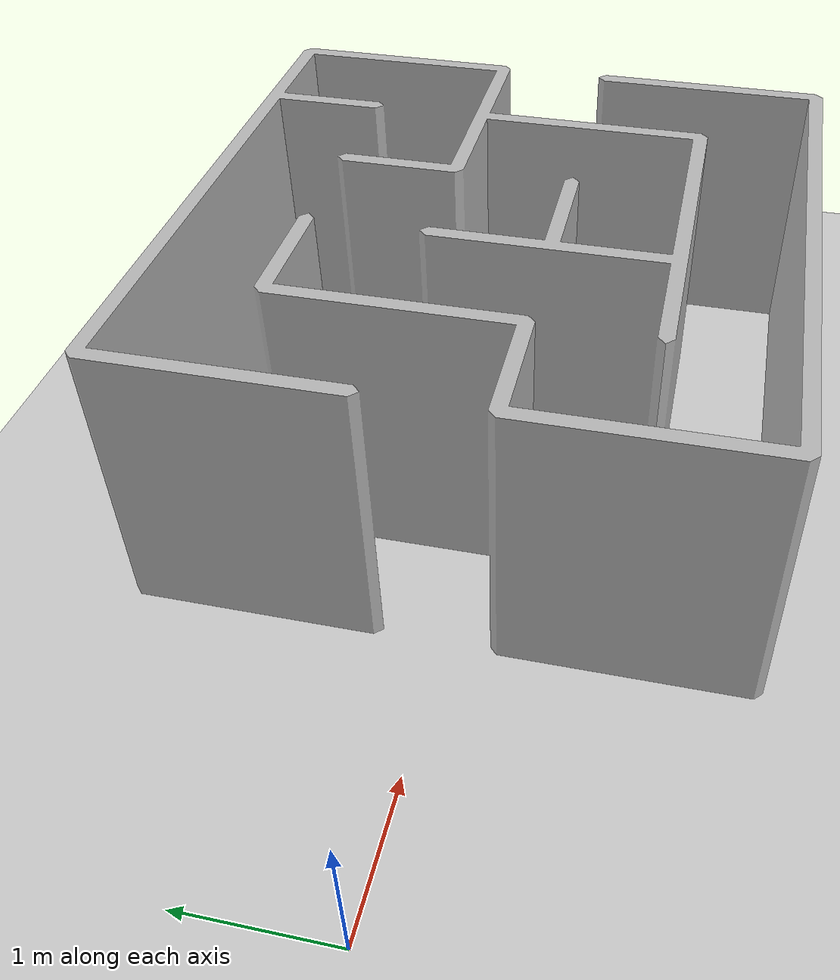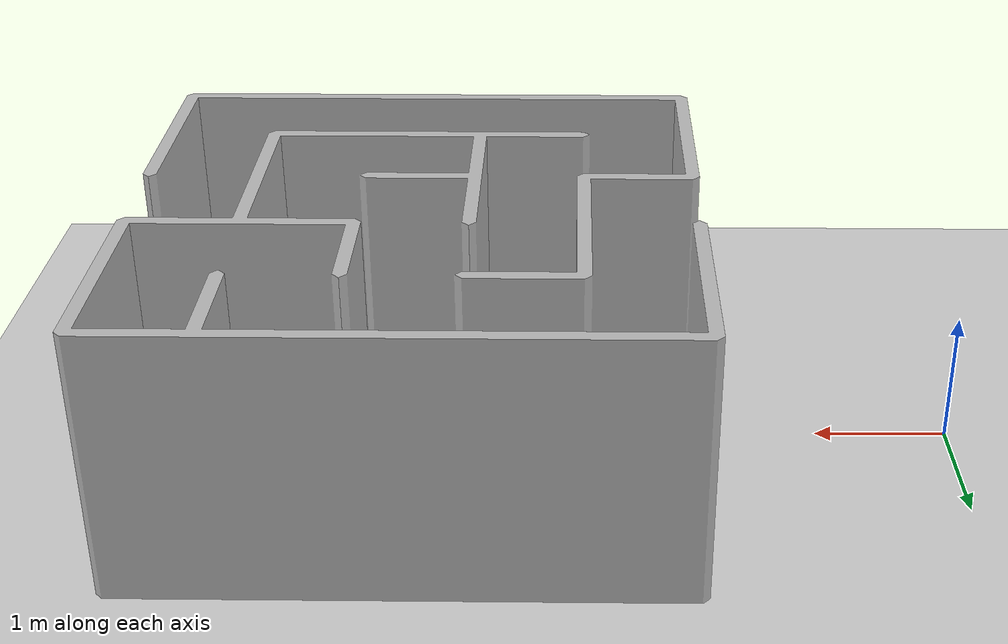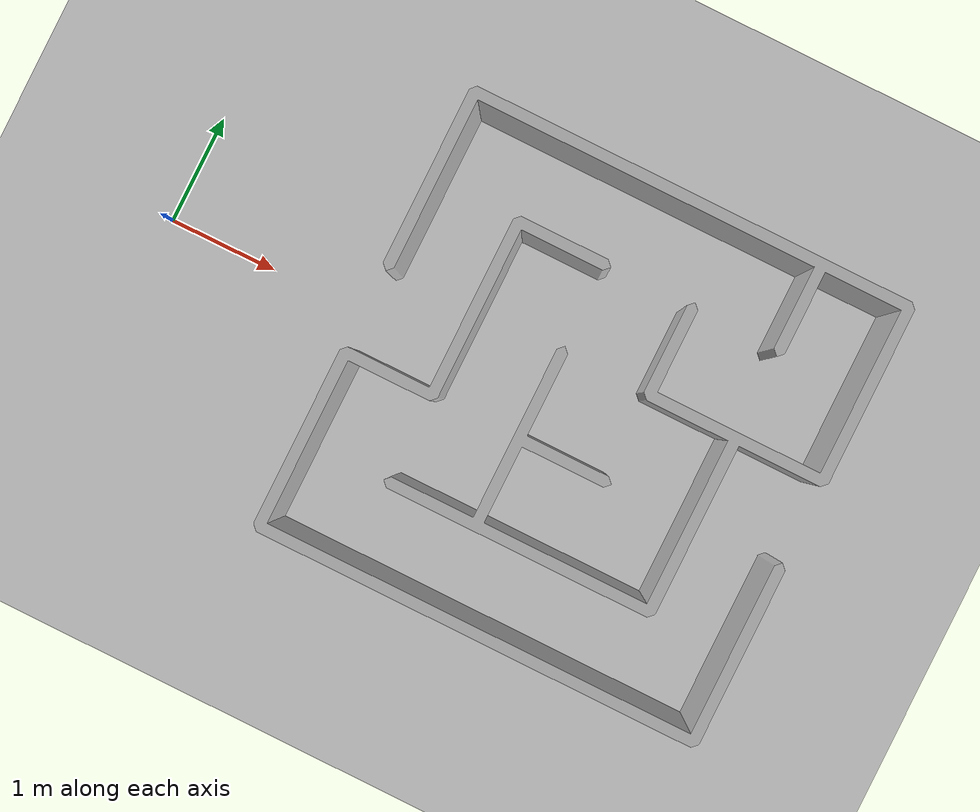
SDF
<?xml version="1.0"?>
<sdf version='1.11'>
  <world name='maze_world'>
    <physics name='1ms' type='ignored'>
      <max_step_size>0.001</max_step_size>
      <real_time_factor>1</real_time_factor>
      <real_time_update_rate>1000</real_time_update_rate>
    </physics>
    <plugin name='gz::sim::systems::Physics' filename='gz-sim-physics-system'/>
    <plugin name='gz::sim::systems::UserCommands' filename='gz-sim-user-commands-system'/>
    <plugin name='gz::sim::systems::SceneBroadcaster' filename='gz-sim-scene-broadcaster-system'/>
    <plugin name='gz::sim::systems::Contact' filename='gz-sim-contact-system'/>
    <plugin name='gz::sim::systems::Imu' filename='gz-sim-imu-system'/>
    <plugin name='gz::sim::systems::Sensors' filename='gz-sim-sensors-system'>
      <render_engine>ogre2</render_engine>
    </plugin>
    <plugin name="gz::sim::systems::TriggeredPublisher"
            filename="gz-sim-triggered-publisher-system">
      <input type="gz.msgs.Boolean" topic="/maze/touched">
        <match>data: true</match>
      </input>
      <output type="gz.msgs.Twist" topic="/cmd_vel">
        linear: {x: 0.0}, angular: {z: 0.0}
      </output>
    </plugin>
    <gravity>0 0 -9.8000000000000007</gravity>
    <magnetic_field>5.5644999999999998e-06 2.2875799999999999e-05 -4.2388400000000002e-05</magnetic_field>
    <atmosphere type='adiabatic'/>
    <scene>
      <ambient>0.400000006 0.400000006 0.400000006 1</ambient>
      <background>0.699999988 0.699999988 0.699999988 1</background>
      <shadows>true</shadows>
    </scene>
    <model name='ground_plane'>
      <static>true</static>
      <link name='link'>
        <collision name='collision'>
          <geometry>
            <plane>
              <normal>0 0 1</normal>
              <size>100 100</size>
            </plane>
          </geometry>
          <surface>
            <friction>
              <ode/>
            </friction>
            <bounce/>
            <contact/>
          </surface>
        </collision>
        <visual name='visual'>
          <geometry>
            <plane>
              <normal>0 0 1</normal>
              <size>100 100</size>
            </plane>
          </geometry>
          <material>
            <ambient>0.800000012 0.800000012 0.800000012 1</ambient>
            <diffuse>0.800000012 0.800000012 0.800000012 1</diffuse>
            <specular>0.800000012 0.800000012 0.800000012 1</specular>
          </material>
        </visual>
        <pose>0 0 0 0 0 0</pose>
        <inertial>
          <pose>0 0 0 0 0 0</pose>
          <mass>1</mass>
          <inertia>
            <ixx>1</ixx>
            <ixy>0</ixy>
            <ixz>0</ixz>
            <iyy>1</iyy>
            <iyz>0</iyz>
            <izz>1</izz>
          </inertia>
        </inertial>
        <enable_wind>false</enable_wind>
      </link>
      <pose>0 0 0 0 0 0</pose>
      <self_collide>false</self_collide>
    </model>
    <include>
      <uri>model://maze</uri>
      <pose>2 -2 0 0 0 1.57079633</pose>
    </include>
    <light name='sun' type='directional'>
      <pose>0 0 10 0 0 0</pose>
      <cast_shadows>true</cast_shadows>
      <intensity>1</intensity>
      <direction>-0.5 0.10000000000000001 -0.90000000000000002</direction>
      <diffuse>0.800000012 0.800000012 0.800000012 1</diffuse>
      <specular>0.200000003 0.200000003 0.200000003 1</specular>
      <attenuation>
        <range>1000</range>
        <linear>0.01</linear>
        <constant>0.90000000000000002</constant>
        <quadratic>0.001</quadratic>
      </attenuation>
      <spot>
        <inner_angle>0</inner_angle>
        <outer_angle>0</outer_angle>
        <falloff>0</falloff>
      </spot>
    </light>
  </world>
</sdf>

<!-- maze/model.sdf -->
<sdf version="1.11">
  <model name="maze">
    <link name="link">
      <inertial>
        <mass>1</mass>
        <inertia>
          <ixx>0.0</ixx>
          <ixy>0.0</ixy>
          <ixz>0.0</ixz>
          <iyy>0.0</iyy>
          <iyz>0.0</iyz>
          <izz>0.0</izz>
        </inertia>
      </inertial>
      <collision name="collision">
        <pose>0 0 0 0 0 0</pose>
        <geometry>
          <mesh>
            <uri>model://maze/maze.stl</uri>
          </mesh>
        </geometry>
      </collision>
      <visual name="visual">
        <pose>0 0 0 0 0 0</pose>
        <geometry>
          <mesh>
            <uri>model://maze/maze.stl</uri>
          </mesh>
        </geometry>
      </visual>
    </link>
    <static>1</static>
    <plugin name="gz::sim::systems::TouchPlugin"
            filename="gz-sim-touchplugin-system">
      <target>my_robot</target>
      <namespace>maze</namespace>
      <time>0.001</time>
      <enabled>true</enabled>
    </plugin>
  </model>
</sdf>
